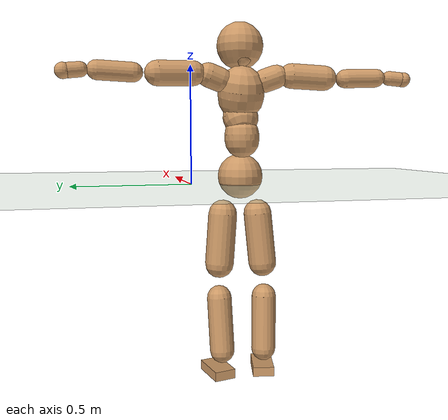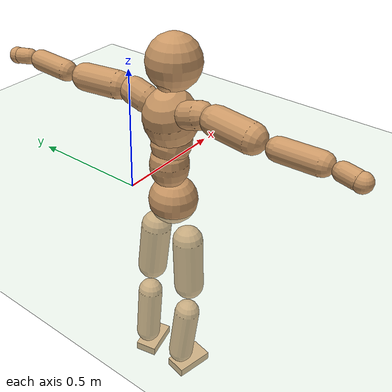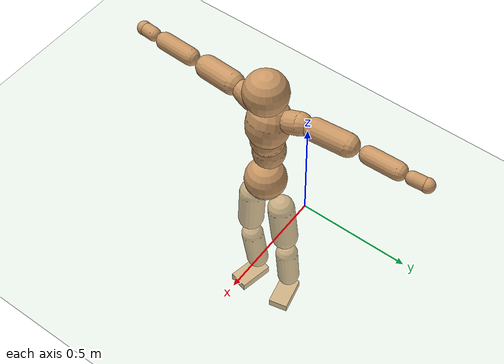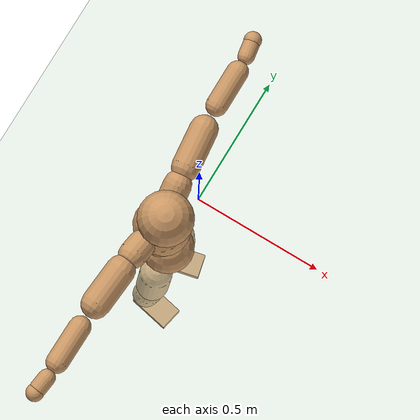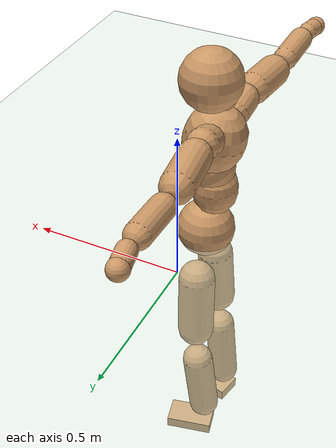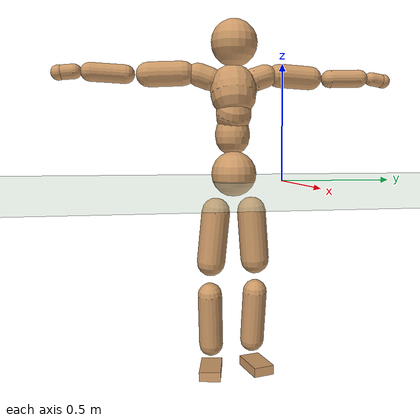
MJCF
<mujoco model="humanoid">
  <compiler coordinate="local"/>
  <default>
    <joint damping="0.0" armature="0.01" stiffness="0.0" limited="true"/>
    <geom conaffinity="1" condim="3" contype="7" margin="0.001" rgba="0.8 0.6 .4 1"/>
  </default>
  <asset>
    <texture type="skybox" builtin="gradient" rgb1=".4 .5 .6" rgb2="0 0 0" width="100" height="100"/>
    <texture builtin="flat" height="1278" mark="cross" markrgb="1 1 1" name="texgeom" random="0.01" rgb1="0.8 0.6 0.4" rgb2="0.8 0.6 0.4" type="cube" width="127"/>
    <texture builtin="checker" height="100" name="texplane" rgb1="0 0 0" rgb2="0.8 0.8 0.8" type="2d" width="100"/>
    <material name="MatPlane" reflectance="0.5" shininess="1" specular="1" texrepeat="60 60" texture="texplane"/>
    <material name="geom" texture="texgeom" texuniform="true"/>
  </asset>
  <worldbody>
    <light cutoff="100" diffuse="1 1 1" dir="-0 0 -1.3" directional="true" exponent="1" pos="0 0 1.3" specular=".1 .1 .1"/>
    <geom conaffinity="1" condim="3" name="floor" pos="0 0 0" rgba="0.8 0.9 0.8 1" size="100 100 .2" type="plane" material="MatPlane"/>
    <body name="Pelvis" pos="-0.0009 -0.2131 0.0331">
      <freejoint name="Pelvis"/>
      <geom type="sphere" contype="1" conaffinity="1" density="500" size="0.0968" pos="0.0000 0.0000 0.0000" name="Pelvis"/>
      <body name="L_Hip" pos="-0.0041 0.0734 -0.0909">
        <joint name="L_Hip_x" type="hinge" pos="0 0 0" axis="1 0 0" stiffness="800" damping="80" armature="0.02" range="-180.0000 180.0000"/>
        <joint name="L_Hip_y" type="hinge" pos="0 0 0" axis="0 1 0" stiffness="800" damping="80" armature="0.02" range="-180.0000 180.0000"/>
        <joint name="L_Hip_z" type="hinge" pos="0 0 0" axis="0 0 1" stiffness="800" damping="80" armature="0.02" range="-180.0000 180.0000"/>
        <geom type="capsule" contype="1" conaffinity="1" density="500" fromto="-0.0023 0.0057 -0.0719 -0.0093 0.0226 -0.2876" size="0.0617" name="L_Hip"/>
        <body name="L_Knee" pos="-0.0117 0.0283 -0.3595">
          <joint name="L_Knee_x" type="hinge" pos="0 0 0" axis="1 0 0" stiffness="800" damping="80" armature="0.02" range="-180.0000 180.0000"/>
          <joint name="L_Knee_y" type="hinge" pos="0 0 0" axis="0 1 0" stiffness="800" damping="80" armature="0.02" range="-180.0000 180.0000"/>
          <joint name="L_Knee_z" type="hinge" pos="0 0 0" axis="0 0 1" stiffness="800" damping="80" armature="0.02" range="-180.0000 180.0000"/>
          <geom type="capsule" contype="1" conaffinity="1" density="500" fromto="-0.0088 -0.0022 -0.0762 -0.0354 -0.0089 -0.3050" size="0.0528" name="L_Knee"/>
          <body name="L_Ankle" pos="-0.0442 -0.0112 -0.3812">
            <joint name="L_Ankle_x" type="hinge" pos="0 0 0" axis="1 0 0" stiffness="800" damping="80" armature="0.02" range="-180.0000 180.0000"/>
            <joint name="L_Ankle_y" type="hinge" pos="0 0 0" axis="0 1 0" stiffness="800" damping="80" armature="0.02" range="-180.0000 180.0000"/>
            <joint name="L_Ankle_z" type="hinge" pos="0 0 0" axis="0 0 1" stiffness="800" damping="80" armature="0.02" range="-180.0000 180.0000"/>
            <geom type="box" contype="1" conaffinity="1" density="500" pos="0.0564 0.0126 -0.0274" size="0.0806 0.0465 0.0203" quat="0.9940 0.0000 0.0000 0.1097" name="L_Ankle"/>
            <body name="L_Toe" pos="0.1128 0.0252 -0.0549">
              <joint name="L_Toe_x" type="hinge" pos="0 0 0" axis="1 0 0" stiffness="500" damping="50" armature="0.02" range="-180.0000 180.0000"/>
              <joint name="L_Toe_y" type="hinge" pos="0 0 0" axis="0 1 0" stiffness="500" damping="50" armature="0.02" range="-180.0000 180.0000"/>
              <joint name="L_Toe_z" type="hinge" pos="0 0 0" axis="0 0 1" stiffness="500" damping="50" armature="0.02" range="-180.0000 180.0000"/>
              <geom type="box" contype="1" conaffinity="1" density="500" pos="0.0000 0.0000 0.0269" size="0.001 0.0023 0.001" quat="0.9932 0.0000 0.0000 0.1161" name="L_Toe"/>
            </body>
          </body>
        </body>
      </body>
      <body name="R_Hip" pos="-0.0008 -0.0712 -0.0911">
        <joint name="R_Hip_x" type="hinge" pos="0 0 0" axis="1 0 0" stiffness="800" damping="80" armature="0.02" range="-180.0000 180.0000"/>
        <joint name="R_Hip_y" type="hinge" pos="0 0 0" axis="0 1 0" stiffness="800" damping="80" armature="0.02" range="-180.0000 180.0000"/>
        <joint name="R_Hip_z" type="hinge" pos="0 0 0" axis="0 0 1" stiffness="800" damping="80" armature="0.02" range="-180.0000 180.0000"/>
        <geom type="capsule" contype="1" conaffinity="1" density="500" fromto="-0.0027 -0.0069 -0.0730 -0.0107 -0.0275 -0.2921" size="0.0609" name="R_Hip"/>
        <body name="R_Knee" pos="-0.0133 -0.0344 -0.3651">
          <joint name="R_Knee_x" type="hinge" pos="0 0 0" axis="1 0 0" stiffness="800" damping="80" armature="0.02" range="-180.0000 180.0000"/>
          <joint name="R_Knee_y" type="hinge" pos="0 0 0" axis="0 1 0" stiffness="800" damping="80" armature="0.02" range="-180.0000 180.0000"/>
          <joint name="R_Knee_z" type="hinge" pos="0 0 0" axis="0 0 1" stiffness="800" damping="80" armature="0.02" range="-180.0000 180.0000"/>
          <geom type="capsule" contype="1" conaffinity="1" density="500" fromto="-0.0086 0.0027 -0.0765 -0.0342 0.0108 -0.3060" size="0.053" name="R_Knee"/>
          <body name="R_Ankle" pos="-0.0428 0.0135 -0.3825">
            <joint name="R_Ankle_x" type="hinge" pos="0 0 0" axis="1 0 0" stiffness="800" damping="80" armature="0.02" range="-180.0000 180.0000"/>
            <joint name="R_Ankle_y" type="hinge" pos="0 0 0" axis="0 1 0" stiffness="800" damping="80" armature="0.02" range="-180.0000 180.0000"/>
            <joint name="R_Ankle_z" type="hinge" pos="0 0 0" axis="0 0 1" stiffness="800" damping="80" armature="0.02" range="-180.0000 180.0000"/>
            <geom type="box" contype="1" conaffinity="1" density="500" pos="0.0583 -0.0118 -0.0234" size="0.0822 0.046 0.0202" quat="0.9950 0.0000 0.0000 -0.0995" name="R_Ankle"/>
            <body name="R_Toe" pos="0.1166 -0.0236 -0.0468">
              <joint name="R_Toe_x" type="hinge" pos="0 0 0" axis="1 0 0" stiffness="500" damping="50" armature="0.02" range="-180.0000 180.0000"/>
              <joint name="R_Toe_y" type="hinge" pos="0 0 0" axis="0 1 0" stiffness="500" damping="50" armature="0.02" range="-180.0000 180.0000"/>
              <joint name="R_Toe_z" type="hinge" pos="0 0 0" axis="0 0 1" stiffness="500" damping="50" armature="0.02" range="-180.0000 180.0000"/>
              <geom type="box" contype="1" conaffinity="1" density="500" pos="0.0000 0.0000 0.0249" size="0.0009 0.0023 0.0011" quat="0.9960 0.0000 0.0000 -0.0898" name="R_Toe"/>
            </body>
          </body>
        </body>
      </body>
      <body name="Torso" pos="-0.0263 -0.002 0.1052">
        <joint name="Torso_x" type="hinge" pos="0 0 0" axis="1 0 0" stiffness="1000" damping="100" armature="0.02" range="-180.0000 180.0000"/>
        <joint name="Torso_y" type="hinge" pos="0 0 0" axis="0 1 0" stiffness="1000" damping="100" armature="0.02" range="-180.0000 180.0000"/>
        <joint name="Torso_z" type="hinge" pos="0 0 0" axis="0 0 1" stiffness="1000" damping="100" armature="0.02" range="-180.0000 180.0000"/>
        <geom type="capsule" contype="1" conaffinity="1" density="500" fromto="-0.0013 0.0019 0.0737 -0.0009 0.0013 0.0491" size="0.0744" name="Torso"/>
        <body name="Spine" pos="-0.0022 0.0032 0.1228">
          <joint name="Spine_x" type="hinge" pos="0 0 0" axis="1 0 0" stiffness="1000" damping="100" armature="0.02" range="-180.0000 180.0000"/>
          <joint name="Spine_y" type="hinge" pos="0 0 0" axis="0 1 0" stiffness="1000" damping="100" armature="0.02" range="-180.0000 180.0000"/>
          <joint name="Spine_z" type="hinge" pos="0 0 0" axis="0 0 1" stiffness="1000" damping="100" armature="0.02" range="-180.0000 180.0000"/>
          <geom type="capsule" contype="1" conaffinity="1" density="500" fromto="0.0181 0.0011 0.0296 0.0121 0.0007 0.0197" size="0.0756" name="Spine"/>
          <body name="Chest" pos="0.0302 0.0019 0.0493">
            <joint name="Chest_x" type="hinge" pos="0 0 0" axis="1 0 0" stiffness="1000" damping="100" armature="0.02" range="-180.0000 180.0000"/>
            <joint name="Chest_y" type="hinge" pos="0 0 0" axis="0 1 0" stiffness="1000" damping="100" armature="0.02" range="-180.0000 180.0000"/>
            <joint name="Chest_z" type="hinge" pos="0 0 0" axis="0 0 1" stiffness="1000" damping="100" armature="0.02" range="-180.0000 180.0000"/>
            <geom type="capsule" contype="1" conaffinity="1" density="500" fromto="-0.0284 -0.0008 0.0907 -0.0190 -0.0006 0.0605" size="0.0989" name="Chest"/>
            <body name="Neck" pos="-0.0566 -0.0023 0.2129">
              <joint name="Neck_x" type="hinge" pos="0 0 0" axis="1 0 0" stiffness="500" damping="50" armature="0.02" range="-180.0000 180.0000"/>
              <joint name="Neck_y" type="hinge" pos="0 0 0" axis="0 1 0" stiffness="500" damping="50" armature="0.02" range="-180.0000 180.0000"/>
              <joint name="Neck_z" type="hinge" pos="0 0 0" axis="0 0 1" stiffness="500" damping="50" armature="0.02" range="-180.0000 180.0000"/>
              <geom type="capsule" contype="1" conaffinity="1" density="500" fromto="0.0098 0.0005 0.0122 0.0394 0.0019 0.0487" size="0.0417" name="Neck"/>
              <body name="Head" pos="0.0492 0.0023 0.0609">
                <joint name="Head_x" type="hinge" pos="0 0 0" axis="1 0 0" stiffness="500" damping="50" armature="0.02" range="-180.0000 180.0000"/>
                <joint name="Head_y" type="hinge" pos="0 0 0" axis="0 1 0" stiffness="500" damping="50" armature="0.02" range="-180.0000 180.0000"/>
                <joint name="Head_z" type="hinge" pos="0 0 0" axis="0 0 1" stiffness="500" damping="50" armature="0.02" range="-180.0000 180.0000"/>
                <geom type="sphere" contype="1" conaffinity="1" density="500" size="0.0989" pos="0.0000 0.0000 0.0000" name="Head"/>
              </body>
            </body>
            <body name="L_Thorax" pos="-0.0406 0.076 0.1211">
              <joint name="L_Thorax_x" type="hinge" pos="0 0 0" axis="1 0 0" stiffness="500" damping="50" armature="0.02" range="-180.0000 180.0000"/>
              <joint name="L_Thorax_y" type="hinge" pos="0 0 0" axis="0 1 0" stiffness="500" damping="50" armature="0.02" range="-180.0000 180.0000"/>
              <joint name="L_Thorax_z" type="hinge" pos="0 0 0" axis="0 0 1" stiffness="500" damping="50" armature="0.02" range="-180.0000 180.0000"/>
              <geom type="capsule" contype="1" conaffinity="1" density="500" fromto="-0.0017 0.0168 0.0059 -0.0070 0.0672 0.0236" size="0.0505" name="L_Thorax"/>
              <body name="L_Shoulder" pos="-0.0087 0.084 0.0295">
                <joint name="L_Shoulder_x" type="hinge" pos="0 0 0" axis="1 0 0" stiffness="500" damping="50" armature="0.02" range="-720.0000 720.0000"/>
                <joint name="L_Shoulder_y" type="hinge" pos="0 0 0" axis="0 1 0" stiffness="500" damping="50" armature="0.02" range="-720.0000 720.0000"/>
                <joint name="L_Shoulder_z" type="hinge" pos="0 0 0" axis="0 0 1" stiffness="500" damping="50" armature="0.02" range="-720.0000 720.0000"/>
                <geom type="capsule" contype="1" conaffinity="1" density="500" fromto="-0.0055 0.0492 -0.0017 -0.0218 0.1968 -0.0066" size="0.0513" name="L_Shoulder"/>
                <body name="L_Elbow" pos="-0.0273 0.246 -0.0083">
                  <joint name="L_Elbow_x" type="hinge" pos="0 0 0" axis="1 0 0" stiffness="500" damping="50" armature="0.02" range="-720.0000 720.0000"/>
                  <joint name="L_Elbow_y" type="hinge" pos="0 0 0" axis="0 1 0" stiffness="500" damping="50" armature="0.02" range="-720.0000 720.0000"/>
                  <joint name="L_Elbow_z" type="hinge" pos="0 0 0" axis="0 0 1" stiffness="500" damping="50" armature="0.02" range="-720.0000 720.0000"/>
                  <geom type="capsule" contype="1" conaffinity="1" density="500" fromto="0.0000 0.0463 0.0017 0.0001 0.1853 0.0070" size="0.0394" name="L_Elbow"/>
                  <body name="L_Wrist" pos="0.0001 0.2316 0.0087">
                    <joint name="L_Wrist_x" type="hinge" pos="0 0 0" axis="1 0 0" stiffness="300" damping="30" armature="0.02" range="-180.0000 180.0000"/>
                    <joint name="L_Wrist_y" type="hinge" pos="0 0 0" axis="0 1 0" stiffness="300" damping="30" armature="0.02" range="-180.0000 180.0000"/>
                    <joint name="L_Wrist_z" type="hinge" pos="0 0 0" axis="0 0 1" stiffness="300" damping="30" armature="0.02" range="-180.0000 180.0000"/>
                    <geom type="capsule" contype="1" conaffinity="1" density="500" fromto="-0.0026 0.0158 -0.0019 -0.0104 0.0632 -0.0076" size="0.0301" name="L_Wrist"/>
                    <body name="L_Hand" pos="-0.013 0.079 -0.0094">
                      <joint name="L_Hand_x" type="hinge" pos="0 0 0" axis="1 0 0" stiffness="300" damping="30" armature="0.02" range="-180.0000 180.0000"/>
                      <joint name="L_Hand_y" type="hinge" pos="0 0 0" axis="0 1 0" stiffness="300" damping="30" armature="0.02" range="-180.0000 180.0000"/>
                      <joint name="L_Hand_z" type="hinge" pos="0 0 0" axis="0 0 1" stiffness="300" damping="30" armature="0.02" range="-180.0000 180.0000"/>
                      <geom type="sphere" contype="1" conaffinity="1" density="500" size="0.0320" pos="0.0000 0.0000 0.0000" name="L_Hand"/>
                    </body>
                  </body>
                </body>
              </body>
            </body>
            <body name="R_Thorax" pos="-0.045 -0.0779 0.1197">
              <joint name="R_Thorax_x" type="hinge" pos="0 0 0" axis="1 0 0" stiffness="500" damping="50" armature="0.02" range="-180.0000 180.0000"/>
              <joint name="R_Thorax_y" type="hinge" pos="0 0 0" axis="0 1 0" stiffness="500" damping="50" armature="0.02" range="-180.0000 180.0000"/>
              <joint name="R_Thorax_z" type="hinge" pos="0 0 0" axis="0 0 1" stiffness="500" damping="50" armature="0.02" range="-180.0000 180.0000"/>
              <geom type="capsule" contype="1" conaffinity="1" density="500" fromto="-0.0020 -0.0174 0.0062 -0.0078 -0.0694 0.0248" size="0.0496" name="R_Thorax"/>
              <body name="R_Shoulder" pos="-0.0098 -0.0868 0.031">
                <joint name="R_Shoulder_x" type="hinge" pos="0 0 0" axis="1 0 0" stiffness="500" damping="50" armature="0.02" range="-720.0000 720.0000"/>
                <joint name="R_Shoulder_y" type="hinge" pos="0 0 0" axis="0 1 0" stiffness="500" damping="50" armature="0.02" range="-720.0000 720.0000"/>
                <joint name="R_Shoulder_z" type="hinge" pos="0 0 0" axis="0 0 1" stiffness="500" damping="50" armature="0.02" range="-720.0000 720.0000"/>
                <geom type="capsule" contype="1" conaffinity="1" density="500" fromto="-0.0041 -0.0479 -0.0022 -0.0165 -0.1916 -0.0089" size="0.0527" name="R_Shoulder"/>
                <body name="R_Elbow" pos="-0.0207 -0.2395 -0.0112">
                  <joint name="R_Elbow_x" type="hinge" pos="0 0 0" axis="1 0 0" stiffness="500" damping="50" armature="0.02" range="-720.0000 720.0000"/>
                  <joint name="R_Elbow_y" type="hinge" pos="0 0 0" axis="0 1 0" stiffness="500" damping="50" armature="0.02" range="-720.0000 720.0000"/>
                  <joint name="R_Elbow_z" type="hinge" pos="0 0 0" axis="0 0 1" stiffness="500" damping="50" armature="0.02" range="-720.0000 720.0000"/>
                  <geom type="capsule" contype="1" conaffinity="1" density="500" fromto="-0.0005 -0.0477 0.0020 -0.0022 -0.1910 0.0081" size="0.0397" name="R_Elbow"/>
                  <body name="R_Wrist" pos="-0.0027 -0.2387 0.0101">
                    <joint name="R_Wrist_x" type="hinge" pos="0 0 0" axis="1 0 0" stiffness="300" damping="30" armature="0.02" range="-180.0000 180.0000"/>
                    <joint name="R_Wrist_y" type="hinge" pos="0 0 0" axis="0 1 0" stiffness="300" damping="30" armature="0.02" range="-180.0000 180.0000"/>
                    <joint name="R_Wrist_z" type="hinge" pos="0 0 0" axis="0 0 1" stiffness="300" damping="30" armature="0.02" range="-180.0000 180.0000"/>
                    <geom type="capsule" contype="1" conaffinity="1" density="500" fromto="-0.0021 -0.0159 -0.0014 -0.0082 -0.0635 -0.0057" size="0.0308" name="R_Wrist"/>
                    <body name="R_Hand" pos="-0.0103 -0.0794 -0.0071">
                      <joint name="R_Hand_x" type="hinge" pos="0 0 0" axis="1 0 0" stiffness="300" damping="30" armature="0.02" range="-180.0000 180.0000"/>
                      <joint name="R_Hand_y" type="hinge" pos="0 0 0" axis="0 1 0" stiffness="300" damping="30" armature="0.02" range="-180.0000 180.0000"/>
                      <joint name="R_Hand_z" type="hinge" pos="0 0 0" axis="0 0 1" stiffness="300" damping="30" armature="0.02" range="-180.0000 180.0000"/>
                      <geom type="sphere" contype="1" conaffinity="1" density="500" size="0.0321" pos="0.0000 0.0000 0.0000" name="R_Hand"/>
                    </body>
                  </body>
                </body>
              </body>
            </body>
          </body>
        </body>
      </body>
    </body>
  </worldbody>
  <actuator>
    <motor name="L_Hip_x" joint="L_Hip_x" gear="500"/>
    <motor name="L_Hip_y" joint="L_Hip_y" gear="500"/>
    <motor name="L_Hip_z" joint="L_Hip_z" gear="500"/>
    <motor name="L_Knee_x" joint="L_Knee_x" gear="500"/>
    <motor name="L_Knee_y" joint="L_Knee_y" gear="500"/>
    <motor name="L_Knee_z" joint="L_Knee_z" gear="500"/>
    <motor name="L_Ankle_x" joint="L_Ankle_x" gear="500"/>
    <motor name="L_Ankle_y" joint="L_Ankle_y" gear="500"/>
    <motor name="L_Ankle_z" joint="L_Ankle_z" gear="500"/>
    <motor name="L_Toe_x" joint="L_Toe_x" gear="500"/>
    <motor name="L_Toe_y" joint="L_Toe_y" gear="500"/>
    <motor name="L_Toe_z" joint="L_Toe_z" gear="500"/>
    <motor name="R_Hip_x" joint="R_Hip_x" gear="500"/>
    <motor name="R_Hip_y" joint="R_Hip_y" gear="500"/>
    <motor name="R_Hip_z" joint="R_Hip_z" gear="500"/>
    <motor name="R_Knee_x" joint="R_Knee_x" gear="500"/>
    <motor name="R_Knee_y" joint="R_Knee_y" gear="500"/>
    <motor name="R_Knee_z" joint="R_Knee_z" gear="500"/>
    <motor name="R_Ankle_x" joint="R_Ankle_x" gear="500"/>
    <motor name="R_Ankle_y" joint="R_Ankle_y" gear="500"/>
    <motor name="R_Ankle_z" joint="R_Ankle_z" gear="500"/>
    <motor name="R_Toe_x" joint="R_Toe_x" gear="500"/>
    <motor name="R_Toe_y" joint="R_Toe_y" gear="500"/>
    <motor name="R_Toe_z" joint="R_Toe_z" gear="500"/>
    <motor name="Torso_x" joint="Torso_x" gear="500"/>
    <motor name="Torso_y" joint="Torso_y" gear="500"/>
    <motor name="Torso_z" joint="Torso_z" gear="500"/>
    <motor name="Spine_x" joint="Spine_x" gear="500"/>
    <motor name="Spine_y" joint="Spine_y" gear="500"/>
    <motor name="Spine_z" joint="Spine_z" gear="500"/>
    <motor name="Chest_x" joint="Chest_x" gear="500"/>
    <motor name="Chest_y" joint="Chest_y" gear="500"/>
    <motor name="Chest_z" joint="Chest_z" gear="500"/>
    <motor name="Neck_x" joint="Neck_x" gear="500"/>
    <motor name="Neck_y" joint="Neck_y" gear="500"/>
    <motor name="Neck_z" joint="Neck_z" gear="500"/>
    <motor name="Head_x" joint="Head_x" gear="500"/>
    <motor name="Head_y" joint="Head_y" gear="500"/>
    <motor name="Head_z" joint="Head_z" gear="500"/>
    <motor name="L_Thorax_x" joint="L_Thorax_x" gear="500"/>
    <motor name="L_Thorax_y" joint="L_Thorax_y" gear="500"/>
    <motor name="L_Thorax_z" joint="L_Thorax_z" gear="500"/>
    <motor name="L_Shoulder_x" joint="L_Shoulder_x" gear="500"/>
    <motor name="L_Shoulder_y" joint="L_Shoulder_y" gear="500"/>
    <motor name="L_Shoulder_z" joint="L_Shoulder_z" gear="500"/>
    <motor name="L_Elbow_x" joint="L_Elbow_x" gear="500"/>
    <motor name="L_Elbow_y" joint="L_Elbow_y" gear="500"/>
    <motor name="L_Elbow_z" joint="L_Elbow_z" gear="500"/>
    <motor name="L_Wrist_x" joint="L_Wrist_x" gear="500"/>
    <motor name="L_Wrist_y" joint="L_Wrist_y" gear="500"/>
    <motor name="L_Wrist_z" joint="L_Wrist_z" gear="500"/>
    <motor name="L_Hand_x" joint="L_Hand_x" gear="500"/>
    <motor name="L_Hand_y" joint="L_Hand_y" gear="500"/>
    <motor name="L_Hand_z" joint="L_Hand_z" gear="500"/>
    <motor name="R_Thorax_x" joint="R_Thorax_x" gear="500"/>
    <motor name="R_Thorax_y" joint="R_Thorax_y" gear="500"/>
    <motor name="R_Thorax_z" joint="R_Thorax_z" gear="500"/>
    <motor name="R_Shoulder_x" joint="R_Shoulder_x" gear="500"/>
    <motor name="R_Shoulder_y" joint="R_Shoulder_y" gear="500"/>
    <motor name="R_Shoulder_z" joint="R_Shoulder_z" gear="500"/>
    <motor name="R_Elbow_x" joint="R_Elbow_x" gear="500"/>
    <motor name="R_Elbow_y" joint="R_Elbow_y" gear="500"/>
    <motor name="R_Elbow_z" joint="R_Elbow_z" gear="500"/>
    <motor name="R_Wrist_x" joint="R_Wrist_x" gear="500"/>
    <motor name="R_Wrist_y" joint="R_Wrist_y" gear="500"/>
    <motor name="R_Wrist_z" joint="R_Wrist_z" gear="500"/>
    <motor name="R_Hand_x" joint="R_Hand_x" gear="500"/>
    <motor name="R_Hand_y" joint="R_Hand_y" gear="500"/>
    <motor name="R_Hand_z" joint="R_Hand_z" gear="500"/>
  </actuator>
  <contact>
    <exclude body1="Torso" body2="Chest"/>
    <exclude body1="Head" body2="Chest"/>
    <exclude body1="R_Knee" body2="R_Toe"/>
    <exclude body1="R_Knee" body2="L_Ankle"/>
    <exclude body1="R_Knee" body2="L_Toe"/>
    <exclude body1="L_Knee" body2="L_Toe"/>
    <exclude body1="L_Knee" body2="R_Ankle"/>
    <exclude body1="L_Knee" body2="R_Toe"/>
    <exclude body1="L_Shoulder" body2="Chest"/>
    <exclude body1="R_Shoulder" body2="Chest"/>
  </contact>
  <sensor/>
  <size njmax="700" nconmax="700"/>
</mujoco>
